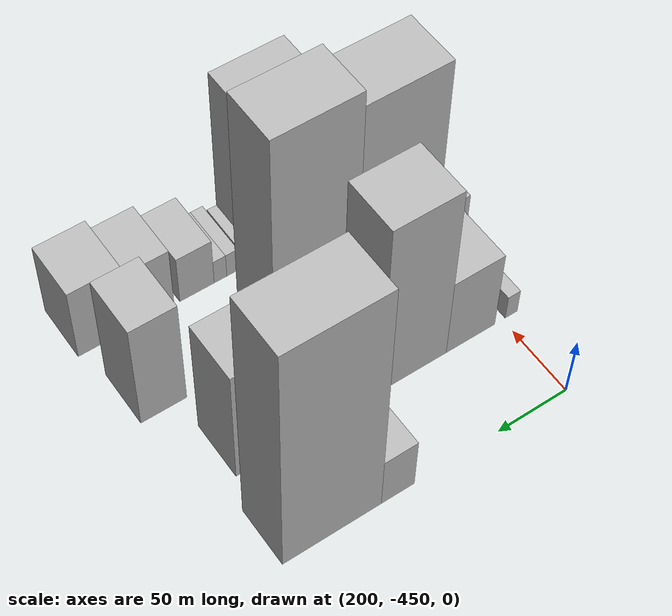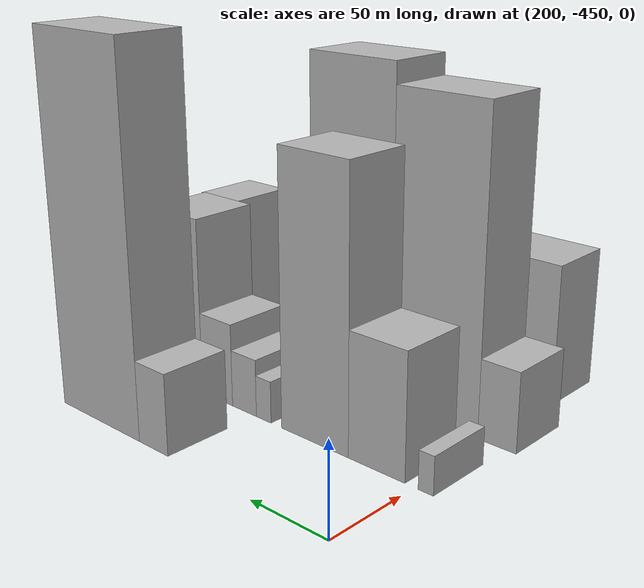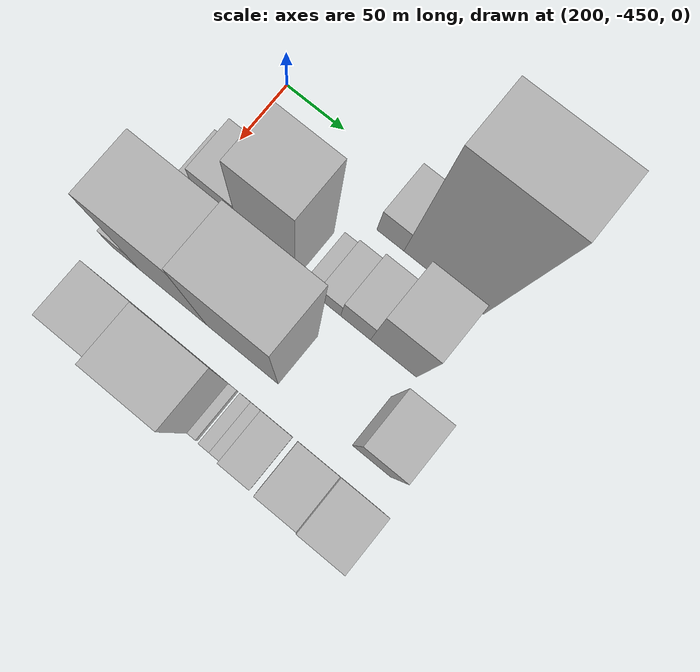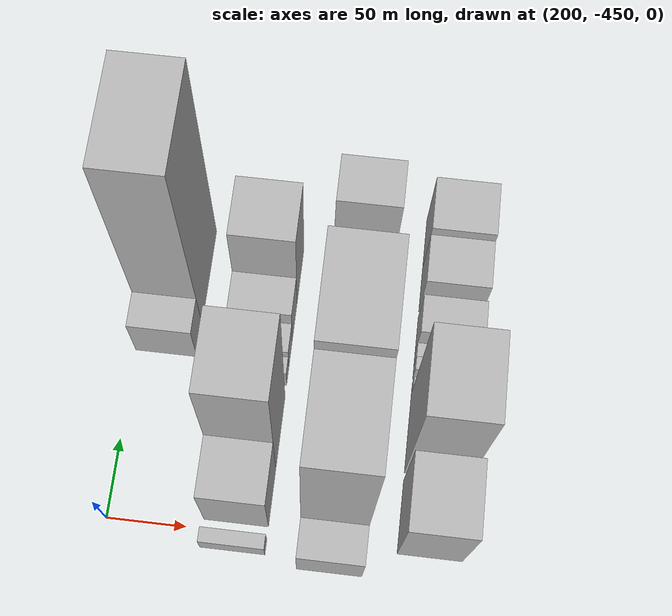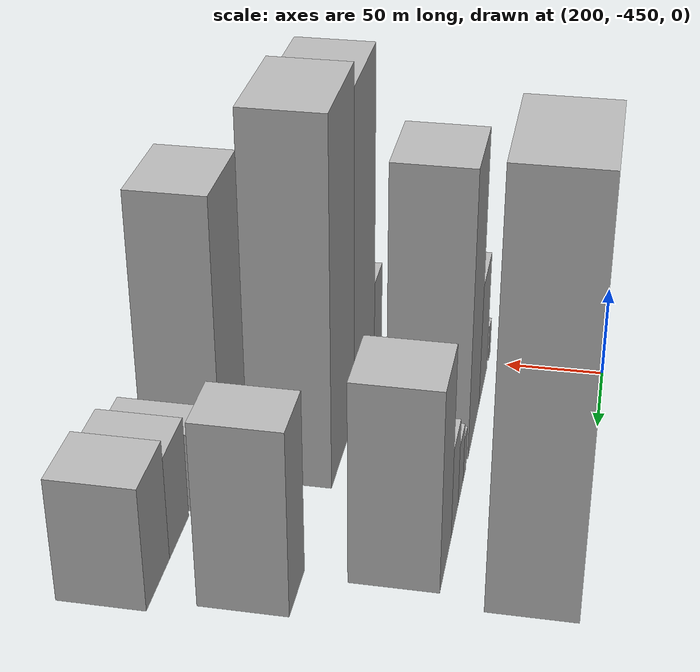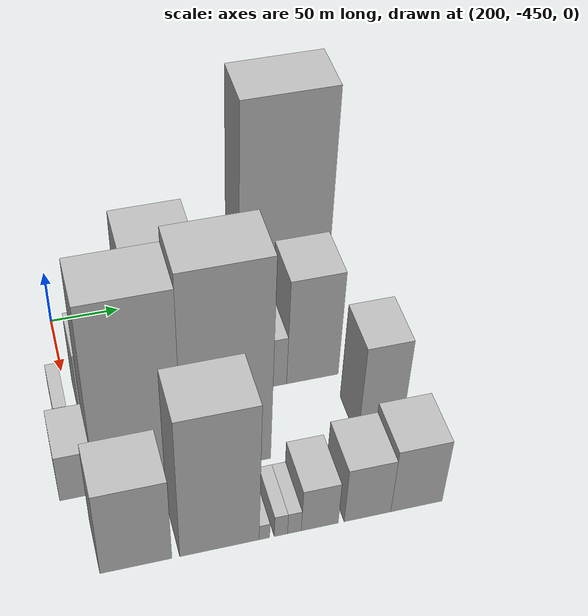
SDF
<sdf version="1.6">
 <world name="default">
  <model name="building_127">
   <static>1</static>
   <pose>220.0000 -328.7168 0 0.000000 0.000000 0.000000</pose>
   <link name="link">
    <pose>0 0 22.50 0 0 0</pose>
    <collision name="collision"><geometry><box><size>40.0000 22.8532 45.0000</size></box></geometry></collision>
    <visual name="visual">
     <cast_shadows>0</cast_shadows>
     <geometry><box><size>40.0000 22.8532 45.0000</size></box></geometry>
     <material>
      <script>
       <uri>model://HANNAS_wall/materials/scripts</uri>
       <uri>model://HANNAS_wall/materials/textures</uri>
       <name>vrc/HANNAS_wall</name>
      </script>
     </material>
    </visual>
   </link>
  </model>
  <model name="building_128">
   <static>1</static>
   <pose>220.0000 -284.1158 0 0.000000 0.000000 0.000000</pose>
   <link name="link">
    <pose>0 0 103.50 0 0 0</pose>
    <collision name="collision"><geometry><box><size>40.0000 66.3488 207.0000</size></box></geometry></collision>
    <visual name="visual">
     <cast_shadows>0</cast_shadows>
     <geometry><box><size>40.0000 66.3488 207.0000</size></box></geometry>
     <material>
      <script>
       <uri>model://HANNAS_wall/materials/scripts</uri>
       <uri>model://HANNAS_wall/materials/textures</uri>
       <name>vrc/HANNAS_wall</name>
      </script>
     </material>
    </visual>
   </link>
  </model>
  <model name="building_176">
   <static>1</static>
   <pose>280.0000 -456.6479 0 0.000000 0.000000 0.000000</pose>
   <link name="link">
    <pose>0 0 10.50 0 0 0</pose>
    <collision name="collision"><geometry><box><size>40.0000 9.1643 21.0000</size></box></geometry></collision>
    <visual name="visual">
     <cast_shadows>0</cast_shadows>
     <geometry><box><size>40.0000 9.1643 21.0000</size></box></geometry>
     <material>
      <script>
       <uri>model://HANNAS_wall/materials/scripts</uri>
       <uri>model://HANNAS_wall/materials/textures</uri>
       <name>vrc/HANNAS_wall</name>
      </script>
     </material>
    </visual>
   </link>
  </model>
  <model name="building_177">
   <static>1</static>
   <pose>280.0000 -425.9094 0 0.000000 0.000000 0.000000</pose>
   <link name="link">
    <pose>0 0 34.50 0 0 0</pose>
    <collision name="collision"><geometry><box><size>40.0000 36.3127 69.0000</size></box></geometry></collision>
    <visual name="visual">
     <cast_shadows>0</cast_shadows>
     <geometry><box><size>40.0000 36.3127 69.0000</size></box></geometry>
     <material>
      <script>
       <uri>model://HANNAS_wall/materials/scripts</uri>
       <uri>model://HANNAS_wall/materials/textures</uri>
       <name>vrc/HANNAS_wall</name>
      </script>
     </material>
    </visual>
   </link>
  </model>
  <model name="building_178">
   <static>1</static>
   <pose>280.0000 -384.1992 0 0.000000 0.000000 0.000000</pose>
   <link name="link">
    <pose>0 0 76.50 0 0 0</pose>
    <collision name="collision"><geometry><box><size>40.0000 47.1078 153.0000</size></box></geometry></collision>
    <visual name="visual">
     <cast_shadows>0</cast_shadows>
     <geometry><box><size>40.0000 47.1078 153.0000</size></box></geometry>
     <material>
      <script>
       <uri>model://HANNAS_wall/materials/scripts</uri>
       <uri>model://HANNAS_wall/materials/textures</uri>
       <name>vrc/HANNAS_wall</name>
      </script>
     </material>
    </visual>
   </link>
  </model>
  <model name="building_179">
   <static>1</static>
   <pose>280.0000 -346.9964 0 0.000000 0.000000 0.000000</pose>
   <link name="link">
    <pose>0 0 12.00 0 0 0</pose>
    <collision name="collision"><geometry><box><size>40.0000 11.2979 24.0000</size></box></geometry></collision>
    <visual name="visual">
     <cast_shadows>0</cast_shadows>
     <geometry><box><size>40.0000 11.2979 24.0000</size></box></geometry>
     <material>
      <script>
       <uri>model://HANNAS_wall/materials/scripts</uri>
       <uri>model://HANNAS_wall/materials/textures</uri>
       <name>vrc/HANNAS_wall</name>
      </script>
     </material>
    </visual>
   </link>
  </model>
  <model name="building_180">
   <static>1</static>
   <pose>280.0000 -331.8905 0 0.000000 0.000000 0.000000</pose>
   <link name="link">
    <pose>0 0 16.50 0 0 0</pose>
    <collision name="collision"><geometry><box><size>40.0000 18.9137 33.0000</size></box></geometry></collision>
    <visual name="visual">
     <cast_shadows>0</cast_shadows>
     <geometry><box><size>40.0000 18.9137 33.0000</size></box></geometry>
     <material>
      <script>
       <uri>model://HANNAS_wall/materials/scripts</uri>
       <uri>model://HANNAS_wall/materials/textures</uri>
       <name>vrc/HANNAS_wall</name>
      </script>
     </material>
    </visual>
   </link>
  </model>
  <model name="building_181">
   <static>1</static>
   <pose>280.0000 -309.9900 0 0.000000 0.000000 0.000000</pose>
   <link name="link">
    <pose>0 0 24.00 0 0 0</pose>
    <collision name="collision"><geometry><box><size>40.0000 24.8874 48.0000</size></box></geometry></collision>
    <visual name="visual">
     <cast_shadows>0</cast_shadows>
     <geometry><box><size>40.0000 24.8874 48.0000</size></box></geometry>
     <material>
      <script>
       <uri>model://HANNAS_wall/materials/scripts</uri>
       <uri>model://HANNAS_wall/materials/textures</uri>
       <name>vrc/HANNAS_wall</name>
      </script>
     </material>
    </visual>
   </link>
  </model>
  <model name="building_182">
   <static>1</static>
   <pose>280.0000 -278.5786 0 0.000000 0.000000 0.000000</pose>
   <link name="link">
    <pose>0 0 51.00 0 0 0</pose>
    <collision name="collision"><geometry><box><size>40.0000 37.9353 102.0000</size></box></geometry></collision>
    <visual name="visual">
     <cast_shadows>0</cast_shadows>
     <geometry><box><size>40.0000 37.9353 102.0000</size></box></geometry>
     <material>
      <script>
       <uri>model://HANNAS_wall/materials/scripts</uri>
       <uri>model://HANNAS_wall/materials/textures</uri>
       <name>vrc/HANNAS_wall</name>
      </script>
     </material>
    </visual>
   </link>
  </model>
  <model name="building_233">
   <static>1</static>
   <pose>340.0000 -455.6373 0 0.000000 0.000000 0.000000</pose>
   <link name="link">
    <pose>0 0 22.50 0 0 0</pose>
    <collision name="collision"><geometry><box><size>40.0000 23.6118 45.0000</size></box></geometry></collision>
    <visual name="visual">
     <cast_shadows>0</cast_shadows>
     <geometry><box><size>40.0000 23.6118 45.0000</size></box></geometry>
     <material>
      <script>
       <uri>model://HANNAS_wall/materials/scripts</uri>
       <uri>model://HANNAS_wall/materials/textures</uri>
       <name>vrc/HANNAS_wall</name>
      </script>
     </material>
    </visual>
   </link>
  </model>
  <model name="building_234">
   <static>1</static>
   <pose>340.0000 -414.6225 0 0.000000 0.000000 0.000000</pose>
   <link name="link">
    <pose>0 0 88.50 0 0 0</pose>
    <collision name="collision"><geometry><box><size>40.0000 58.4178 177.0000</size></box></geometry></collision>
    <visual name="visual">
     <cast_shadows>0</cast_shadows>
     <geometry><box><size>40.0000 58.4178 177.0000</size></box></geometry>
     <material>
      <script>
       <uri>model://HANNAS_wall/materials/scripts</uri>
       <uri>model://HANNAS_wall/materials/textures</uri>
       <name>vrc/HANNAS_wall</name>
      </script>
     </material>
    </visual>
   </link>
  </model>
  <model name="building_235">
   <static>1</static>
   <pose>340.0000 -355.4143 0 0.000000 0.000000 0.000000</pose>
   <link name="link">
    <pose>0 0 94.50 0 0 0</pose>
    <collision name="collision"><geometry><box><size>40.0000 59.9987 189.0000</size></box></geometry></collision>
    <visual name="visual">
     <cast_shadows>0</cast_shadows>
     <geometry><box><size>40.0000 59.9987 189.0000</size></box></geometry>
     <material>
      <script>
       <uri>model://HANNAS_wall/materials/scripts</uri>
       <uri>model://HANNAS_wall/materials/textures</uri>
       <name>vrc/HANNAS_wall</name>
      </script>
     </material>
    </visual>
   </link>
  </model>
  <model name="building_236">
   <static>1</static>
   <pose>340.0000 -248.7207 0 0.000000 0.000000 0.000000</pose>
   <link name="link">
    <pose>0 0 46.50 0 0 0</pose>
    <collision name="collision"><geometry><box><size>40.0000 31.1295 93.0000</size></box></geometry></collision>
    <visual name="visual">
     <cast_shadows>0</cast_shadows>
     <geometry><box><size>40.0000 31.1295 93.0000</size></box></geometry>
     <material>
      <script>
       <uri>model://HANNAS_wall/materials/scripts</uri>
       <uri>model://HANNAS_wall/materials/textures</uri>
       <name>vrc/HANNAS_wall</name>
      </script>
     </material>
    </visual>
   </link>
  </model>
  <model name="building_287">
   <static>1</static>
   <pose>400.0000 -428.4436 0 0.000000 0.000000 0.000000</pose>
   <link name="link">
    <pose>0 0 40.50 0 0 0</pose>
    <collision name="collision"><geometry><box><size>40.0000 45.6995 81.0000</size></box></geometry></collision>
    <visual name="visual">
     <cast_shadows>0</cast_shadows>
     <geometry><box><size>40.0000 45.6995 81.0000</size></box></geometry>
     <material>
      <script>
       <uri>model://HANNAS_wall/materials/scripts</uri>
       <uri>model://HANNAS_wall/materials/textures</uri>
       <name>vrc/HANNAS_wall</name>
      </script>
     </material>
    </visual>
   </link>
  </model>
  <model name="building_288">
   <static>1</static>
   <pose>400.0000 -374.8408 0 0.000000 0.000000 0.000000</pose>
   <link name="link">
    <pose>0 0 67.50 0 0 0</pose>
    <collision name="collision"><geometry><box><size>40.0000 51.5060 135.0000</size></box></geometry></collision>
    <visual name="visual">
     <cast_shadows>0</cast_shadows>
     <geometry><box><size>40.0000 51.5060 135.0000</size></box></geometry>
     <material>
      <script>
       <uri>model://HANNAS_wall/materials/scripts</uri>
       <uri>model://HANNAS_wall/materials/textures</uri>
       <name>vrc/HANNAS_wall</name>
      </script>
     </material>
    </visual>
   </link>
  </model>
  <model name="building_289">
   <static>1</static>
   <pose>400.0000 -345.6099 0 0.000000 0.000000 0.000000</pose>
   <link name="link">
    <pose>0 0 7.50 0 0 0</pose>
    <collision name="collision"><geometry><box><size>40.0000 6.9559 15.0000</size></box></geometry></collision>
    <visual name="visual">
     <cast_shadows>0</cast_shadows>
     <geometry><box><size>40.0000 6.9559 15.0000</size></box></geometry>
     <material>
      <script>
       <uri>model://HANNAS_wall/materials/scripts</uri>
       <uri>model://HANNAS_wall/materials/textures</uri>
       <name>vrc/HANNAS_wall</name>
      </script>
     </material>
    </visual>
   </link>
  </model>
  <model name="building_290">
   <static>1</static>
   <pose>400.0000 -334.7514 0 0.000000 0.000000 0.000000</pose>
   <link name="link">
    <pose>0 0 10.50 0 0 0</pose>
    <collision name="collision"><geometry><box><size>40.0000 8.7611 21.0000</size></box></geometry></collision>
    <visual name="visual">
     <cast_shadows>0</cast_shadows>
     <geometry><box><size>40.0000 8.7611 21.0000</size></box></geometry>
     <material>
      <script>
       <uri>model://HANNAS_wall/materials/scripts</uri>
       <uri>model://HANNAS_wall/materials/textures</uri>
       <name>vrc/HANNAS_wall</name>
      </script>
     </material>
    </visual>
   </link>
  </model>
  <model name="building_291">
   <static>1</static>
   <pose>400.0000 -325.8312 0 0.000000 0.000000 0.000000</pose>
   <link name="link">
    <pose>0 0 10.50 0 0 0</pose>
    <collision name="collision"><geometry><box><size>40.0000 9.0793 21.0000</size></box></geometry></collision>
    <visual name="visual">
     <cast_shadows>0</cast_shadows>
     <geometry><box><size>40.0000 9.0793 21.0000</size></box></geometry>
     <material>
      <script>
       <uri>model://HANNAS_wall/materials/scripts</uri>
       <uri>model://HANNAS_wall/materials/textures</uri>
       <name>vrc/HANNAS_wall</name>
      </script>
     </material>
    </visual>
   </link>
  </model>
  <model name="building_292">
   <static>1</static>
   <pose>400.0000 -308.9810 0 0.000000 0.000000 0.000000</pose>
   <link name="link">
    <pose>0 0 21.00 0 0 0</pose>
    <collision name="collision"><geometry><box><size>40.0000 24.6211 42.0000</size></box></geometry></collision>
    <visual name="visual">
     <cast_shadows>0</cast_shadows>
     <geometry><box><size>40.0000 24.6211 42.0000</size></box></geometry>
     <material>
      <script>
       <uri>model://HANNAS_wall/materials/scripts</uri>
       <uri>model://HANNAS_wall/materials/textures</uri>
       <name>vrc/HANNAS_wall</name>
      </script>
     </material>
    </visual>
   </link>
  </model>
  <model name="building_293">
   <static>1</static>
   <pose>400.0000 -276.9393 0 0.000000 0.000000 0.000000</pose>
   <link name="link">
    <pose>0 0 27.00 0 0 0</pose>
    <collision name="collision"><geometry><box><size>40.0000 31.4621 54.0000</size></box></geometry></collision>
    <visual name="visual">
     <cast_shadows>0</cast_shadows>
     <geometry><box><size>40.0000 31.4621 54.0000</size></box></geometry>
     <material>
      <script>
       <uri>model://HANNAS_wall/materials/scripts</uri>
       <uri>model://HANNAS_wall/materials/textures</uri>
       <name>vrc/HANNAS_wall</name>
      </script>
     </material>
    </visual>
   </link>
  </model>
  <model name="building_294">
   <static>1</static>
   <pose>400.0000 -243.6271 0 0.000000 0.000000 0.000000</pose>
   <link name="link">
    <pose>0 0 31.50 0 0 0</pose>
    <collision name="collision"><geometry><box><size>40.0000 35.1623 63.0000</size></box></geometry></collision>
    <visual name="visual">
     <cast_shadows>0</cast_shadows>
     <geometry><box><size>40.0000 35.1623 63.0000</size></box></geometry>
     <material>
      <script>
       <uri>model://HANNAS_wall/materials/scripts</uri>
       <uri>model://HANNAS_wall/materials/textures</uri>
       <name>vrc/HANNAS_wall</name>
      </script>
     </material>
    </visual>
   </link>
  </model>
 </world>
</sdf>
